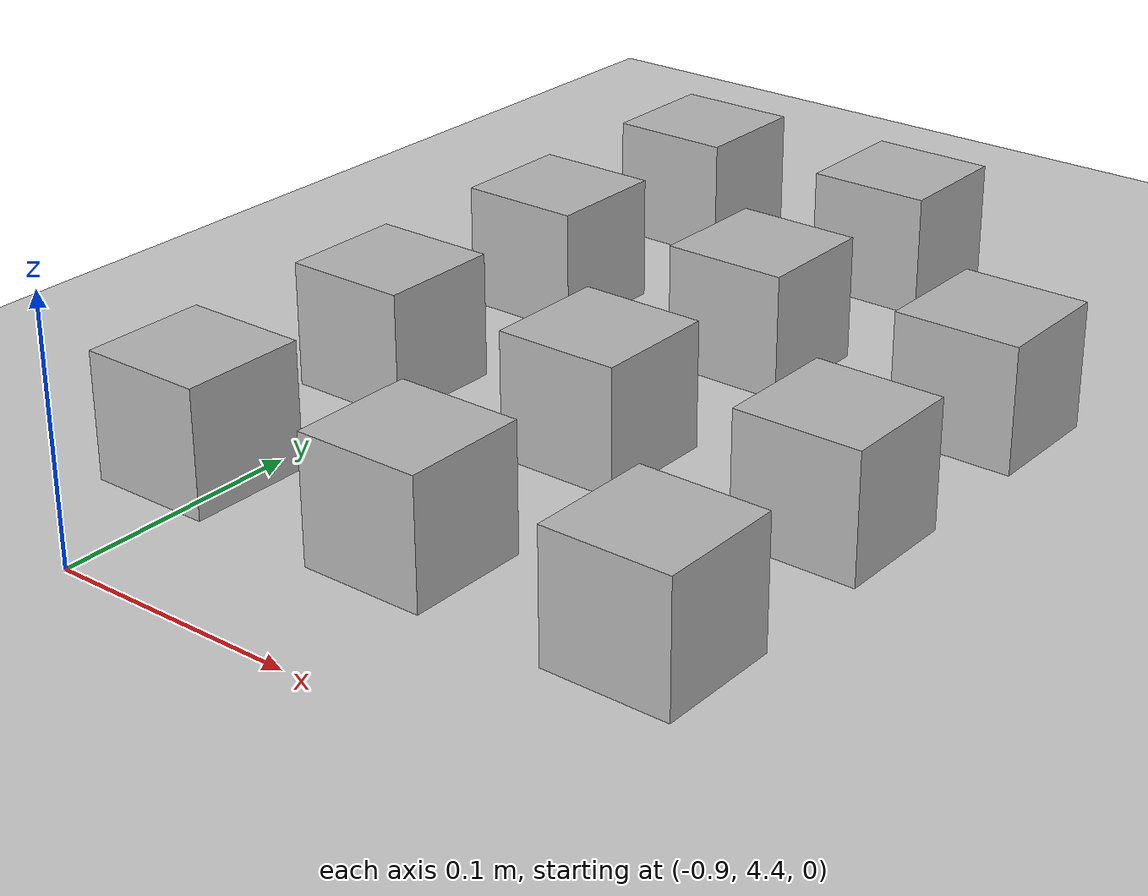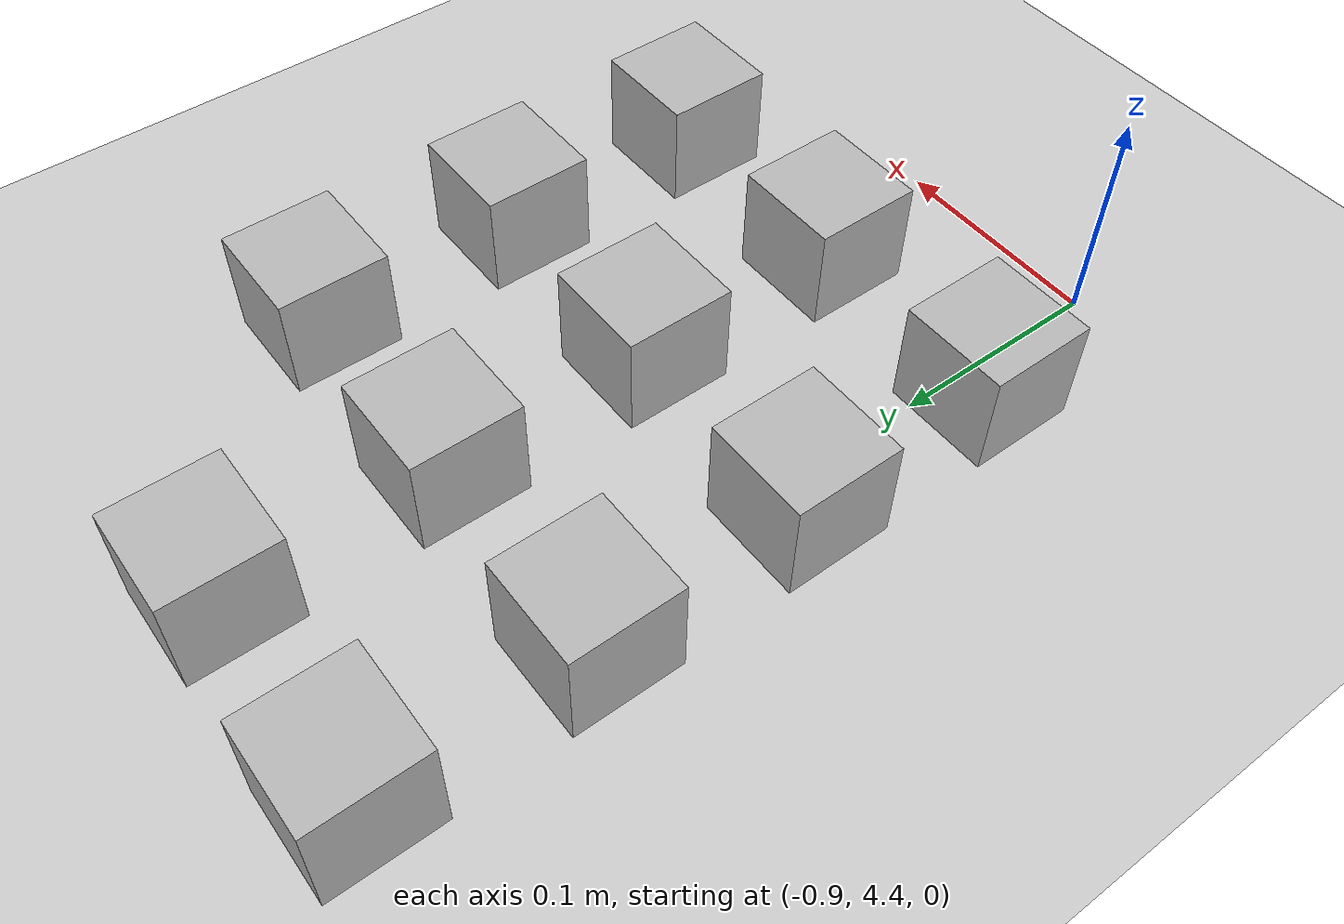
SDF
<sdf version="1.6">
 <world name="default">
  <model name="ground_plane">
   <static>1</static>
   <link name="link">
    <collision name="collision">
     <geometry><plane><normal>0 0 1</normal><size>100 100</size></plane></geometry>
     <surface><friction><ode><mu>100</mu><mu2>50</mu2></ode></friction></surface>
    </collision>
    <visual name="visual">
     <cast_shadows>0</cast_shadows>
     <geometry><plane><normal>0 0 1</normal><size>100 100</size></plane></geometry>
     <material>
      <script><uri>file://media/materials/scripts/gazebo.material</uri><name>Gazebo/Grey</name></script>
     </material>
    </visual>
   </link>
  </model>
  <model name="at4">
   <static>0</static>
   <link name="link">
    <inertial>
     <mass>0.01</mass>
     <inertia><ixx>4e-05</ixx><ixy>0</ixy><ixz>0</ixz><iyy>4e-05</iyy><iyz>0</iyz><izz>4e-05</izz></inertia>
    </inertial>
    <visual name="visual">
     <geometry><box><size>0.05 0.05 0.05</size></box></geometry>
     <material>
      <script>
       <uri>model://at0/materials/scripts</uri>
       <uri>model://at0/materials/textures</uri>
       <name>at0/Diffuse</name>
      </script>
     </material>
    </visual>
    <collision name="collision">
     <geometry><box><size>0.05 0.05 0.05</size></box></geometry>
     <surface><friction><ode><mu>0.8</mu><mu2>0.7</mu2></ode></friction></surface>
    </collision>
   </link>
   <pose>-0.91449 4.47479 0.025 0 -0 0</pose>
  </model>
  <model name="at5">
   <static>0</static>
   <link name="link">
    <inertial>
     <mass>0.01</mass>
     <inertia><ixx>4e-05</ixx><ixy>0</ixy><ixz>0</ixz><iyy>4e-05</iyy><iyz>0</iyz><izz>4e-05</izz></inertia>
    </inertial>
    <visual name="visual">
     <geometry><box><size>0.05 0.05 0.05</size></box></geometry>
     <material>
      <script>
       <uri>model://at0/materials/scripts</uri>
       <uri>model://at0/materials/textures</uri>
       <name>at0/Diffuse</name>
      </script>
     </material>
    </visual>
    <collision name="collision">
     <geometry><box><size>0.05 0.05 0.05</size></box></geometry>
     <surface><friction><ode><mu>0.8</mu><mu2>0.7</mu2></ode></friction></surface>
    </collision>
   </link>
   <pose>-0.81449 4.47479 0.025 0 -0 0</pose>
  </model>
  <model name="at6">
   <static>0</static>
   <link name="link">
    <inertial>
     <mass>0.01</mass>
     <inertia><ixx>4e-05</ixx><ixy>0</ixy><ixz>0</ixz><iyy>4e-05</iyy><iyz>0</iyz><izz>4e-05</izz></inertia>
    </inertial>
    <visual name="visual">
     <geometry><box><size>0.05 0.05 0.05</size></box></geometry>
     <material>
      <script>
       <uri>model://at0/materials/scripts</uri>
       <uri>model://at0/materials/textures</uri>
       <name>at0/Diffuse</name>
      </script>
     </material>
    </visual>
    <collision name="collision">
     <geometry><box><size>0.05 0.05 0.05</size></box></geometry>
     <surface><friction><ode><mu>0.8</mu><mu2>0.7</mu2></ode></friction></surface>
    </collision>
   </link>
   <pose>-0.71449 4.47479 0.025 0 -0 0</pose>
  </model>
  <model name="at12">
   <static>0</static>
   <link name="link">
    <inertial>
     <mass>0.01</mass>
     <inertia><ixx>4e-05</ixx><ixy>0</ixy><ixz>0</ixz><iyy>4e-05</iyy><iyz>0</iyz><izz>4e-05</izz></inertia>
    </inertial>
    <visual name="visual">
     <geometry><box><size>0.05 0.05 0.05</size></box></geometry>
     <material>
      <script>
       <uri>model://at0/materials/scripts</uri>
       <uri>model://at0/materials/textures</uri>
       <name>at0/Diffuse</name>
      </script>
     </material>
    </visual>
    <collision name="collision">
     <geometry><box><size>0.05 0.05 0.05</size></box></geometry>
     <surface><friction><ode><mu>0.8</mu><mu2>0.7</mu2></ode></friction></surface>
    </collision>
   </link>
   <pose>-0.91449 4.57479 0.025 0 -0 0</pose>
  </model>
  <model name="at13">
   <static>0</static>
   <link name="link">
    <inertial>
     <mass>0.01</mass>
     <inertia><ixx>4e-05</ixx><ixy>0</ixy><ixz>0</ixz><iyy>4e-05</iyy><iyz>0</iyz><izz>4e-05</izz></inertia>
    </inertial>
    <visual name="visual">
     <geometry><box><size>0.05 0.05 0.05</size></box></geometry>
     <material>
      <script>
       <uri>model://at0/materials/scripts</uri>
       <uri>model://at0/materials/textures</uri>
       <name>at0/Diffuse</name>
      </script>
     </material>
    </visual>
    <collision name="collision">
     <geometry><box><size>0.05 0.05 0.05</size></box></geometry>
     <surface><friction><ode><mu>0.8</mu><mu2>0.7</mu2></ode></friction></surface>
    </collision>
   </link>
   <pose>-0.81449 4.57479 0.025 0 -0 0</pose>
  </model>
  <model name="at14">
   <static>0</static>
   <link name="link">
    <inertial>
     <mass>0.01</mass>
     <inertia><ixx>4e-05</ixx><ixy>0</ixy><ixz>0</ixz><iyy>4e-05</iyy><iyz>0</iyz><izz>4e-05</izz></inertia>
    </inertial>
    <visual name="visual">
     <geometry><box><size>0.05 0.05 0.05</size></box></geometry>
     <material>
      <script>
       <uri>model://at0/materials/scripts</uri>
       <uri>model://at0/materials/textures</uri>
       <name>at0/Diffuse</name>
      </script>
     </material>
    </visual>
    <collision name="collision">
     <geometry><box><size>0.05 0.05 0.05</size></box></geometry>
     <surface><friction><ode><mu>0.8</mu><mu2>0.7</mu2></ode></friction></surface>
    </collision>
   </link>
   <pose>-0.71449 4.57479 0.025 0 -0 0</pose>
  </model>
  <model name="at20">
   <static>0</static>
   <link name="link">
    <inertial>
     <mass>0.01</mass>
     <inertia><ixx>4e-05</ixx><ixy>0</ixy><ixz>0</ixz><iyy>4e-05</iyy><iyz>0</iyz><izz>4e-05</izz></inertia>
    </inertial>
    <visual name="visual">
     <geometry><box><size>0.05 0.05 0.05</size></box></geometry>
     <material>
      <script>
       <uri>model://at0/materials/scripts</uri>
       <uri>model://at0/materials/textures</uri>
       <name>at0/Diffuse</name>
      </script>
     </material>
    </visual>
    <collision name="collision">
     <geometry><box><size>0.05 0.05 0.05</size></box></geometry>
     <surface><friction><ode><mu>0.8</mu><mu2>0.7</mu2></ode></friction></surface>
    </collision>
   </link>
   <pose>-0.91449 4.67479 0.025 0 -0 0</pose>
  </model>
  <model name="at21">
   <static>0</static>
   <link name="link">
    <inertial>
     <mass>0.01</mass>
     <inertia><ixx>4e-05</ixx><ixy>0</ixy><ixz>0</ixz><iyy>4e-05</iyy><iyz>0</iyz><izz>4e-05</izz></inertia>
    </inertial>
    <visual name="visual">
     <geometry><box><size>0.05 0.05 0.05</size></box></geometry>
     <material>
      <script>
       <uri>model://at0/materials/scripts</uri>
       <uri>model://at0/materials/textures</uri>
       <name>at0/Diffuse</name>
      </script>
     </material>
    </visual>
    <collision name="collision">
     <geometry><box><size>0.05 0.05 0.05</size></box></geometry>
     <surface><friction><ode><mu>0.8</mu><mu2>0.7</mu2></ode></friction></surface>
    </collision>
   </link>
   <pose>-0.81449 4.67479 0.025 0 -0 0</pose>
  </model>
  <model name="at22">
   <static>0</static>
   <link name="link">
    <inertial>
     <mass>0.01</mass>
     <inertia><ixx>4e-05</ixx><ixy>0</ixy><ixz>0</ixz><iyy>4e-05</iyy><iyz>0</iyz><izz>4e-05</izz></inertia>
    </inertial>
    <visual name="visual">
     <geometry><box><size>0.05 0.05 0.05</size></box></geometry>
     <material>
      <script>
       <uri>model://at0/materials/scripts</uri>
       <uri>model://at0/materials/textures</uri>
       <name>at0/Diffuse</name>
      </script>
     </material>
    </visual>
    <collision name="collision">
     <geometry><box><size>0.05 0.05 0.05</size></box></geometry>
     <surface><friction><ode><mu>0.8</mu><mu2>0.7</mu2></ode></friction></surface>
    </collision>
   </link>
   <pose>-0.71449 4.67479 0.025 0 -0 0</pose>
  </model>
  <model name="at28">
   <static>0</static>
   <link name="link">
    <inertial>
     <mass>0.01</mass>
     <inertia><ixx>4e-05</ixx><ixy>0</ixy><ixz>0</ixz><iyy>4e-05</iyy><iyz>0</iyz><izz>4e-05</izz></inertia>
    </inertial>
    <visual name="visual">
     <geometry><box><size>0.05 0.05 0.05</size></box></geometry>
     <material>
      <script>
       <uri>model://at0/materials/scripts</uri>
       <uri>model://at0/materials/textures</uri>
       <name>at0/Diffuse</name>
      </script>
     </material>
    </visual>
    <collision name="collision">
     <geometry><box><size>0.05 0.05 0.05</size></box></geometry>
     <surface><friction><ode><mu>0.8</mu><mu2>0.7</mu2></ode></friction></surface>
    </collision>
   </link>
   <pose>-0.91449 4.77479 0.025 0 -0 0</pose>
  </model>
  <model name="at29">
   <static>0</static>
   <link name="link">
    <inertial>
     <mass>0.01</mass>
     <inertia><ixx>4e-05</ixx><ixy>0</ixy><ixz>0</ixz><iyy>4e-05</iyy><iyz>0</iyz><izz>4e-05</izz></inertia>
    </inertial>
    <visual name="visual">
     <geometry><box><size>0.05 0.05 0.05</size></box></geometry>
     <material>
      <script>
       <uri>model://at0/materials/scripts</uri>
       <uri>model://at0/materials/textures</uri>
       <name>at0/Diffuse</name>
      </script>
     </material>
    </visual>
    <collision name="collision">
     <geometry><box><size>0.05 0.05 0.05</size></box></geometry>
     <surface><friction><ode><mu>0.8</mu><mu2>0.7</mu2></ode></friction></surface>
    </collision>
   </link>
   <pose>-0.81449 4.77479 0.025 0 -0 0</pose>
  </model>
 </world>
</sdf>
